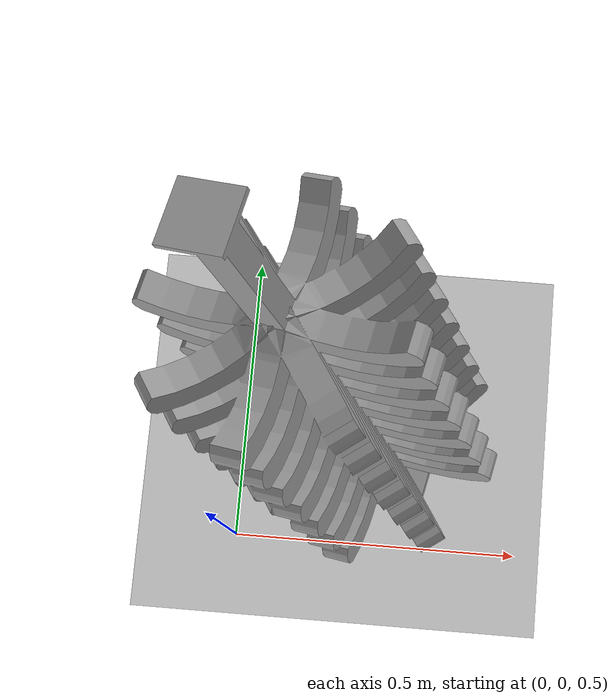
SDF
<sdf version="1.6">
 <world name="default">
  <light name="sun" type="directional">
   <pose>0 0 10 0 -0 0</pose>
   <diffuse>0.8 0.8 0.8 1</diffuse>
   <specular>0.2 0.2 0.2 1</specular>
   <attenuation>
    <range>1000</range>
    <constant>0.9</constant>
    <linear>0.01</linear>
    <quadratic>0.001</quadratic>
   </attenuation>
   <direction>-0.5 0.1 -0.9</direction>
  </light>
  <model name="ground_plane">
   <static>1</static>
   <link name="link">
    <collision name="collision">
     <geometry><plane><normal>0 0 1</normal><size>100 100</size></plane></geometry>
     <surface>
      <contact><collide_bitmask>65535</collide_bitmask></contact>
      <friction><ode><mu>100</mu><mu2>50</mu2></ode></friction>
     </surface>
    </collision>
    <visual name="visual">
     <cast_shadows>0</cast_shadows>
     <geometry><plane><normal>0 0 1</normal><size>100 100</size></plane></geometry>
     <material>
      <script><uri>file://media/materials/scripts/gazebo.material</uri><name>Gazebo/Grey</name></script>
     </material>
    </visual>
   </link>
  </model>
  <gravity>0 0 -9.8</gravity>
  <magnetic_field>6e-06 2.3e-05 -4.2e-05</magnetic_field>
  <atmosphere type="adiabatic"/>
  <physics name="default_physics" default="0" type="ode">
   <max_step_size>0.001</max_step_size>
   <real_time_factor>1</real_time_factor>
   <real_time_update_rate>1000</real_time_update_rate>
  </physics>
  <scene><ambient>0.4 0.4 0.4 1</ambient><background>0.7 0.7 0.7 1</background><shadows>1</shadows></scene>
  <spherical_coordinates>
   <surface_model>EARTH_WGS84</surface_model>
   <latitude_deg>0</latitude_deg>
   <longitude_deg>0</longitude_deg>
   <elevation>0</elevation>
   <heading_deg>0</heading_deg>
  </spherical_coordinates>
  <model name="banana">
   <static>0</static>
   <link name="banana::link">
    <collision name="collision">
     <geometry>
      <mesh><uri>model://banana/meshes/treepart3.STL</uri><scale>0.001 0.001 0.001</scale></mesh>
     </geometry>
     <surface><friction><ode><mu>1000</mu><mu2>500</mu2></ode></friction></surface>
    </collision>
    <visual name="visual">
     <cast_shadows>0</cast_shadows>
     <geometry>
      <mesh><uri>model://banana/meshes/treepart3.STL</uri><scale>0.001 0.001 0.001</scale></mesh>
     </geometry>
     <material>
      <script><uri>file://media/materials/scripts/gazebo.material</uri><name>Gazebo/Grey</name></script>
     </material>
    </visual>
    <inertial>
     <inertia><ixx>0.001</ixx><ixy>0</ixy><ixz>0</ixz><iyy>0.001</iyy><iyz>0</iyz><izz>0.001</izz></inertia>
     <mass>1</mass>
    </inertial>
   </link>
   <pose>0.053822 -0.046105 0.026332 -0.110771 -0.289105 -0.180588</pose>
  </model>
 </world>
</sdf>
